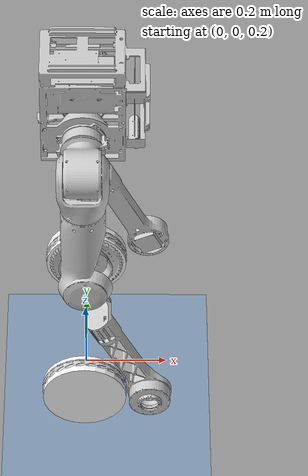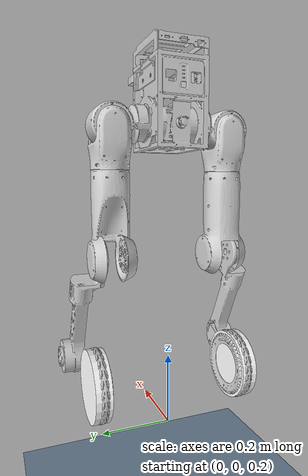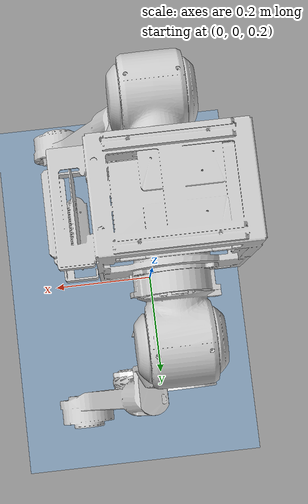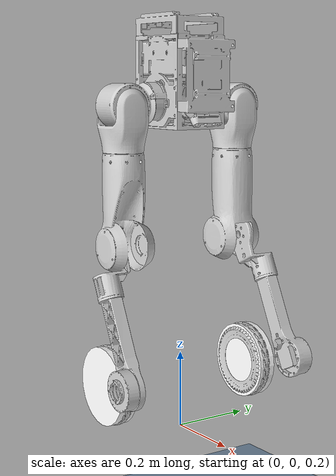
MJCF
<?xml version='1.0' encoding='UTF-8'?>
<mujoco model="bipedal_robot">
  <compiler angle="radian" meshdir="../meshes"/>
  <option timestep="0.001"/>
  <size njmax="5000" nconmax="1000"/>
  <default>
    <light castshadow="false" diffuse="1 1 1"/>
    <camera fovy="60"/>
    <default class="visual">
      <geom contype="0" conaffinity="0" group="1" type="mesh" density="0" rgba="0.8 0.8 0.8 1.0"/>
    </default>
    <default class="collision">
      <geom type="mesh" density="0" rgba="0.8 0.8 0.8 0.3"/>
    </default>
    <joint damping="0.01" margin="0.0001" solreflimit="0.002 1"/>
    <geom contype="1" conaffinity="1" friction="1.0 0.3 0.3" rgba="0.5 0.6 0.7 0.5" margin="0.001" group="0" solref="0.01 1"/>
    <equality solref="0.001 1"/>
  </default>
  <asset>
    <mesh name="base_Link" file="base_Link.STL"/>
    <mesh name="proximal_pitch_L_Link" file="proximal_pitch_L_Link.STL"/>
    <mesh name="proximal_roll_L_Link" file="proximal_roll_L_Link.STL"/>
    <mesh name="proximal_yaw_L_Link" file="proximal_yaw_L_Link.STL"/>
    <mesh name="knee_L_Link" file="knee_L_Link.STL"/>
    <mesh name="wheel_L_Link" file="wheel_L_Link.STL"/>
    <mesh name="proximal_pitch_R_Link" file="proximal_pitch_R_Link.STL"/>
    <mesh name="proximal_roll_R_Link" file="proximal_roll_R_Link.STL"/>
    <mesh name="proximal_yaw_R_Link" file="proximal_yaw_R_Link.STL"/>
    <mesh name="knee_R_Link" file="knee_R_Link.STL"/>
    <mesh name="wheel_R_Link" file="wheel_R_Link.STL"/>
    <texture name="texplane" type="2d" builtin="checker" rgb1="0.2 0.3 0.4" rgb2="0.1 0.15 0.2" width="100" height="100" />
    <material name="matplane" reflectance="0." texture="texplane" texrepeat="1 1" texuniform="true" />
  </asset>
  <worldbody>
    <light directional="true" diffuse="0.4 0.4 0.4" specular="0.1 0.1 0.1" pos="0 0 5.0" dir="0 0 -1" castshadow="false" />
    <light directional="true" diffuse="0.6 0.6 0.6" specular="0.2 0.2 0.2" pos="0 0 4" dir="0 0 -1" castshadow="false" />
    <geom name="ground" type="plane" pos="0 0 0" size="100 100 0.001" quat="1 0 0 0" material="matplane" condim="3" conaffinity="15" />
    <camera name="track" mode="trackcom" pos="0 -2.3 1.6" xyaxes="1 0 0 0 0.707 0.707"/>

    <!-- base -->
    <body name="base_Link" pos="0.0 0.0 1.0">
      <inertial pos="0.00385 -0.00011 0.11254" quat="0.685641 -0.173048 -0.174878 0.685105" mass="12.57" diaginertia="0.135813 0.118632 0.101515"/>
      <joint type="free" stiffness="1e-09" damping="1e-08"/>
      <geom mesh="base_Link" class="visual"/>
      <geom mesh="base_Link" class="collision"/>
      <site name="base_imu" pos="0 0 0"/>

      <!-- proximal pitch L Link -->
      <body name="proximal_pitch_L_Link" pos="-0.00044 0.09178 0.05474">
        <inertial pos="-0.00547 0.07014 -0.00611" quat="0.749537 0.661877 -0.00992031 0.00384555" mass="2.21" diaginertia="0.00438583 0.0035012 0.00307523"/>
        <joint name="proximal_pitch_L_Joint" pos="0 0 0" axis="0 0.996195 -0.0871554" range="-3.14159 2.60054" actuatorfrcrange="-150 150" armature="0.0685894"/>
        <geom mesh="proximal_pitch_L_Link" class="visual"/>
        <geom mesh="proximal_pitch_L_Link" class="collision"/>
        <body name="proximal_roll_L_Link" pos="-0.032 0.0758 -0.00663">
          <inertial pos="0.03124 0.00035 -0.08414" quat="0.700753 -0.0110253 -0.00230623 0.713315" mass="1.74" diaginertia="0.00545642 0.00476973 0.00305218"/>
          <joint name="proximal_roll_L_Joint" pos="0 0 0" axis="1 0 0" range="-0.261799 3.19395" actuatorfrcrange="-150 150" armature="0.0685894"/>
          <geom mesh="proximal_roll_L_Link" class="visual"/>
          <geom mesh="proximal_roll_L_Link" class="collision"/>
          <body name="proximal_yaw_L_Link" pos="0.032 0 -0.1374">
            <inertial pos="-0.00254 0.00155 -0.10742" quat="0.999939 0.00343106 -0.0104624 -0.00121375" mass="1.65" diaginertia="0.0155483 0.0148541 0.00377436"/>
            <joint name="proximal_yaw_L_Joint" pos="0 0 0" axis="0 0 1" range="-3.66519 1.48353" actuatorfrcrange="-60 60" armature="0.0169834"/>
            <geom mesh="proximal_yaw_L_Link" class="visual"/>
            <geom mesh="proximal_yaw_L_Link" class="collision"/>
            <body name="knee_L_Link" pos="0.004 0.032 -0.2126">
              <inertial pos="-0.00204 -0.02449 -0.12995" quat="0.705858 0.00865249 -0.0018957 0.708298" mass="4.66" diaginertia="0.112887 0.11058 0.00617015"/>
              <joint name="knee_L_Joint" pos="0 0 0" axis="0 1 0" range="-2.61799 0.261799" actuatorfrcrange="-150 150" armature="0.0685894"/>
              <geom mesh="knee_L_Link" class="visual"/>
              <geom mesh="knee_L_Link" class="collision"/>
              <body name="wheel_L_Link" pos="-0.004 0.013 -0.35">
                <inertial pos="0.00048 0.00484 0.0003" quat="0.607286 0.362444 0.362219 0.607155" mass="0.91" diaginertia="0.00490844 0.00260471 0.00254986"/>
                <joint name="wheel_L_Joint" pos="0 0 0" axis="0 1 0" range="-1.74533e+06 1.74533e+06" actuatorfrcrange="-22 22" armature="0.0110718"/>
                <geom mesh="wheel_L_Link" class="visual"/>
                <geom size="0.1 0.0225" pos="0 0.003 0" quat="0.707107 0.707107 0 0" type="cylinder" rgba="1 1 1 1"/>
              </body>
            </body>
          </body>
        </body>
      </body>

      <!-- proximal pitch R Link -->
      <body name="proximal_pitch_R_Link" pos="-0.00044 -0.09178 0.05474">
        <inertial pos="-0.00547 -0.07014 -0.00611" quat="0.661877 0.749537 -0.00384555 0.00992031" mass="2.21" diaginertia="0.00438583 0.0035012 0.00307523"/>
        <joint name="proximal_pitch_R_Joint" pos="0 0 0" axis="0 0.996195 0.0871554" range="-3.14159 2.60054" actuatorfrcrange="-150 150" armature="0.0685894"/>
        <geom mesh="proximal_pitch_R_Link" class="visual"/>
        <geom mesh="proximal_pitch_R_Link" class="collision"/>
        <body name="proximal_roll_R_Link" pos="-0.032 -0.0758 -0.00663">
          <inertial pos="0.03124 -0.00035 -0.08414" quat="0.713315 -0.00230623 -0.0110253 0.700753" mass="1.74" diaginertia="0.00545642 0.00476973 0.00305218"/>
          <joint name="proximal_roll_R_Joint" pos="0 0 0" axis="1 0 0" range="-3.19395 0.261799" actuatorfrcrange="-150 150" armature="0.0685894"/>
          <geom mesh="proximal_roll_R_Link" class="visual"/>
          <geom mesh="proximal_roll_R_Link" class="collision"/>
          <body name="proximal_yaw_R_Link" pos="0.032 0 -0.1374">
            <inertial pos="-0.00254 -0.00155 -0.10742" quat="0.999939 -0.00343106 -0.0104624 0.00121375" mass="1.65" diaginertia="0.0155483 0.0148541 0.00377436"/>
            <joint name="proximal_yaw_R_Joint" pos="0 0 0" axis="0 0 1" range="-1.48353 3.66519" actuatorfrcrange="-60 60" armature="0.0169834"/>
            <geom mesh="proximal_yaw_R_Link" class="visual"/>
            <geom mesh="proximal_yaw_R_Link" class="collision"/>
            <body name="knee_R_Link" pos="0.004 -0.032 -0.2126">
              <inertial pos="-0.00204 0.02449 -0.12995" quat="0.708298 -0.0018957 0.00865249 0.705858" mass="4.66" diaginertia="0.112887 0.11058 0.00617015"/>
              <joint name="knee_R_Joint" pos="0 0 0" axis="0 1 0" range="-2.61799 0.261799" actuatorfrcrange="-150 150" armature="0.0685894"/>
              <geom mesh="knee_R_Link" class="visual"/>
              <geom mesh="knee_R_Link" class="collision"/>
              <body name="wheel_R_Link" pos="-0.004 -0.013 -0.35">
                <inertial pos="0.00048 -0.00484 0.0003" quat="0.607155 0.362219 0.362444 0.607286" mass="0.91" diaginertia="0.00490844 0.00260471 0.00254986"/>
                <joint name="wheel_R_Joint" pos="0 0 0" axis="0 1 0" range="-1.74533e+06 1.74533e+06" actuatorfrcrange="-22 22" armature="0.0110718"/>
                <geom mesh="wheel_R_Link" class="visual"/>
                <geom size="0.1 0.0225" pos="0 -0.003 0" quat="0.707107 0.707107 0 0" type="cylinder" rgba="1 1 1 1"/>
              </body>
            </body>
          </body>
        </body>
      </body>

      <!-- camera -->
      <body name="d435_Link" pos="0.0968 0.01759 -0.00409" quat="0.207918 0 0.978146 0">
        <inertial pos="0 0 0" mass="0.001" diaginertia="1e-07 1e-07 1e-07"/>
        <camera name="d435_depth" pos="0 0 0" quat="0 -0.707107 0.707107 0" fovy="70.840779"/>
        <body name="d435_optical_frame" pos="0 0 0" quat="0.5 -0.5 0.5 -0.5">
          <inertial pos="0 0 0" mass="0.001" diaginertia="1e-07 1e-07 1e-07"/>
        </body>
      </body>
    </body>
  </worldbody>
  <actuator>
    <motor name="proximal_pitch_L" joint="proximal_pitch_L_Joint" ctrllimited="true" ctrlrange="-150 150" gear="1"/>
    <motor name="proximal_roll_L" joint="proximal_roll_L_Joint" ctrllimited="true" ctrlrange="-150 150" gear="1"/>
    <motor name="proximal_yaw_L" joint="proximal_yaw_L_Joint" ctrllimited="true" ctrlrange="-60 60" gear="1"/>
    <motor name="knee_L" joint="knee_L_Joint" ctrllimited="true" ctrlrange="-150 150" gear="1"/>
    <motor name="wheel_L" joint="wheel_L_Joint" ctrllimited="true" ctrlrange="-22 22" gear="1"/>
    <motor name="proximal_pitch_R" joint="proximal_pitch_R_Joint" ctrllimited="true" ctrlrange="-150 150" gear="1"/>
    <motor name="proximal_roll_R" joint="proximal_roll_R_Joint" ctrllimited="true" ctrlrange="-150 150" gear="1"/>
    <motor name="proximal_yaw_R" joint="proximal_yaw_R_Joint" ctrllimited="true" ctrlrange="-60 60" gear="1"/>
    <motor name="knee_R" joint="knee_R_Joint" ctrllimited="true" ctrlrange="-150 150" gear="1"/>
    <motor name="wheel_R" joint="wheel_R_Joint" ctrllimited="true" ctrlrange="-22 22" gear="1"/>
  </actuator>
  <sensor>
    <framequat objtype="site" objname="base_imu" name="base_imu_quat"/>
    <gyro site="base_imu" name="base_imu_gyro"/>
    <accelerometer site="base_imu" name="base_imu_acc"/>

    <jointpos joint="proximal_pitch_L_Joint" name="proximal_pitch_L_pos"/>
    <jointpos joint="proximal_roll_L_Joint" name="proximal_roll_L_pos"/>
    <jointpos joint="proximal_yaw_L_Joint" name="proximal_yaw_L_pos"/>
    <jointpos joint="knee_L_Joint" name="knee_L_pos"/>
    <jointpos joint="wheel_L_Joint" name="wheel_L_pos"/>
    <jointpos joint="proximal_pitch_R_Joint" name="proximal_pitch_R_pos"/>
    <jointpos joint="proximal_roll_R_Joint" name="proximal_roll_R_pos"/>
    <jointpos joint="proximal_yaw_R_Joint" name="proximal_yaw_R_pos"/>
    <jointpos joint="knee_R_Joint" name="knee_R_pos"/>
    <jointpos joint="wheel_R_Joint" name="wheel_R_pos"/>

    <jointvel joint="proximal_pitch_L_Joint" name="proximal_pitch_L_vel"/>
    <jointvel joint="proximal_roll_L_Joint" name="proximal_roll_L_vel"/>
    <jointvel joint="proximal_yaw_L_Joint" name="proximal_yaw_L_vel"/>
    <jointvel joint="knee_L_Joint" name="knee_L_vel"/>
    <jointvel joint="wheel_L_Joint" name="wheel_L_vel"/>
    <jointvel joint="proximal_pitch_R_Joint" name="proximal_pitch_R_vel"/>
    <jointvel joint="proximal_roll_R_Joint" name="proximal_roll_R_vel"/>
    <jointvel joint="proximal_yaw_R_Joint" name="proximal_yaw_R_vel"/>
    <jointvel joint="knee_R_Joint" name="knee_R_vel"/>
    <jointvel joint="wheel_R_Joint" name="wheel_R_vel"/>

    <jointactuatorfrc joint="proximal_pitch_L_Joint" name="proximal_pitch_L_frc"/>
    <jointactuatorfrc joint="proximal_roll_L_Joint" name="proximal_roll_L_frc"/>
    <jointactuatorfrc joint="proximal_yaw_L_Joint" name="proximal_yaw_L_frc"/>
    <jointactuatorfrc joint="knee_L_Joint" name="knee_L_frc"/>
    <jointactuatorfrc joint="wheel_L_Joint" name="wheel_L_frc"/>
    <jointactuatorfrc joint="proximal_pitch_R_Joint" name="proximal_pitch_R_frc"/>
    <jointactuatorfrc joint="proximal_roll_R_Joint" name="proximal_roll_R_frc"/>
    <jointactuatorfrc joint="proximal_yaw_R_Joint" name="proximal_yaw_R_frc"/>
    <jointactuatorfrc joint="knee_R_Joint" name="knee_R_frc"/>
    <jointactuatorfrc joint="wheel_R_Joint" name="wheel_R_frc"/>
  </sensor>
</mujoco>
